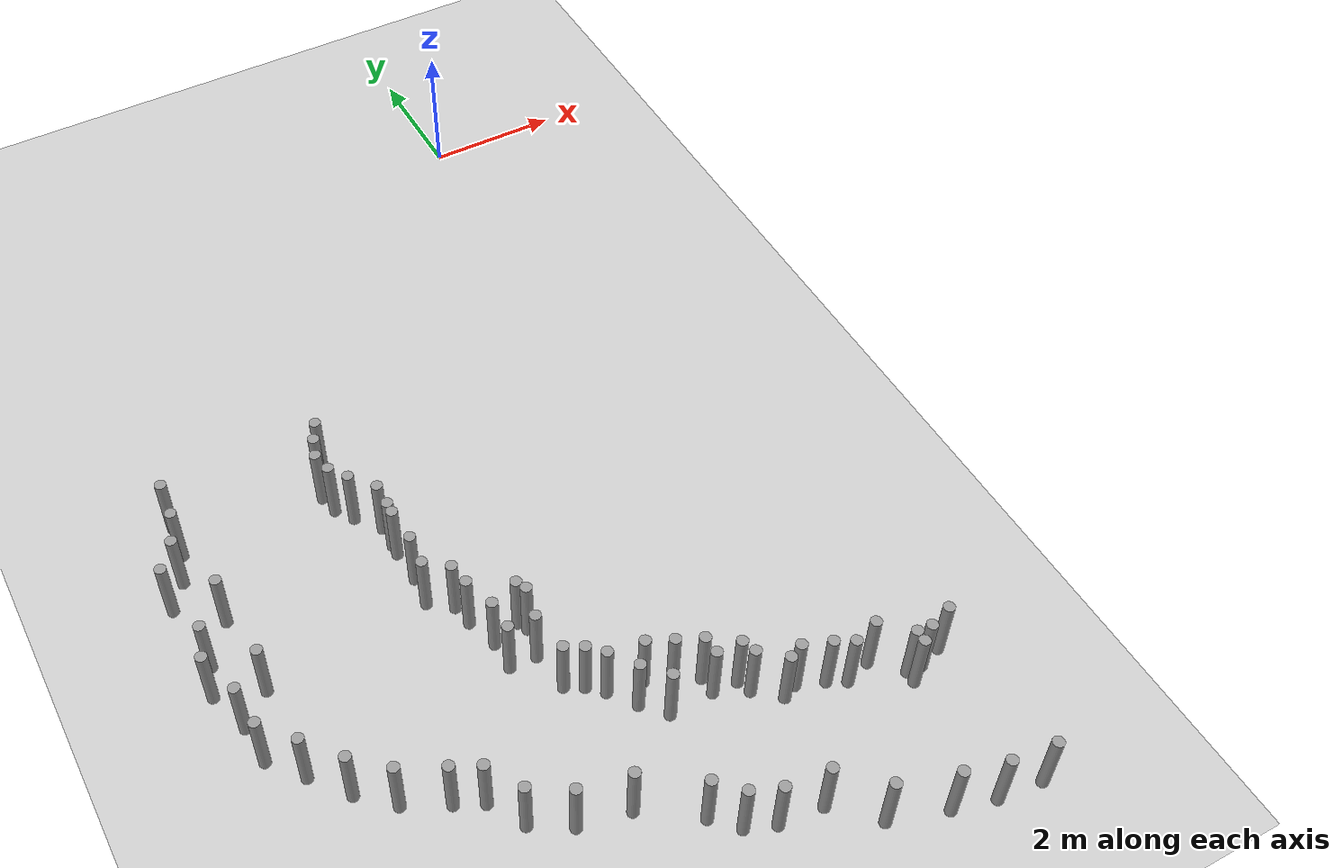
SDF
<sdf version="1.6">
 <world name="default">
  <model name="ground_plane">
   <static>1</static>
   <link name="link">
    <collision name="collision">
     <geometry><plane><normal>0 0 1</normal><size>100 100</size></plane></geometry>
     <surface><friction><ode><mu>100</mu><mu2>50</mu2></ode></friction></surface>
    </collision>
    <visual name="visual">
     <cast_shadows>0</cast_shadows>
     <geometry><plane><normal>0 0 1</normal><size>100 100</size></plane></geometry>
     <material>
      <script><uri>file://media/materials/scripts/gazebo.material</uri><name>Gazebo/Grey</name></script>
     </material>
    </visual>
   </link>
  </model>
  <model name="unit_cylinder_0_clone_clone_34">
   <pose>-0.589688 -11.484 0.49999 0 -0 0.005834</pose>
   <link name="link">
    <inertial>
     <mass>1</mass>
     <inertia><ixx>0.145833</ixx><ixy>0</ixy><ixz>0</ixz><iyy>0.145833</iyy><iyz>0</iyz><izz>0.125</izz></inertia>
    </inertial>
    <collision name="collision">
     <geometry><cylinder><radius>0.0811363</radius><length>1</length></cylinder></geometry>
    </collision>
    <visual name="visual">
     <geometry><cylinder><radius>0.0811363</radius><length>1</length></cylinder></geometry>
     <material>
      <script><name>Gazebo/Grey</name><uri>file://media/materials/scripts/gazebo.material</uri></script>
     </material>
    </visual>
   </link>
  </model>
  <model name="unit_cylinder_0_clone_clone_35">
   <pose>-2.99997 -9.99996 0.499997 0 -0 0.001866</pose>
   <link name="link">
    <inertial>
     <mass>1</mass>
     <inertia><ixx>0.145833</ixx><ixy>0</ixy><ixz>0</ixz><iyy>0.145833</iyy><iyz>0</iyz><izz>0.125</izz></inertia>
    </inertial>
    <collision name="collision">
     <geometry><cylinder><radius>0.0811363</radius><length>1</length></cylinder></geometry>
    </collision>
    <visual name="visual">
     <geometry><cylinder><radius>0.0811363</radius><length>1</length></cylinder></geometry>
     <material>
      <script><name>Gazebo/Grey</name><uri>file://media/materials/scripts/gazebo.material</uri></script>
     </material>
    </visual>
   </link>
  </model>
  <model name="unit_cylinder_0_clone_clone_36">
   <pose>-4 -7.99996 0.499996 0 -0 0.002922</pose>
   <link name="link">
    <inertial>
     <mass>1</mass>
     <inertia><ixx>0.145833</ixx><ixy>0</ixy><ixz>0</ixz><iyy>0.145833</iyy><iyz>0</iyz><izz>0.125</izz></inertia>
    </inertial>
    <collision name="collision">
     <geometry><cylinder><radius>0.0811363</radius><length>1</length></cylinder></geometry>
    </collision>
    <visual name="visual">
     <geometry><cylinder><radius>0.0811363</radius><length>1</length></cylinder></geometry>
     <material>
      <script><name>Gazebo/Grey</name><uri>file://media/materials/scripts/gazebo.material</uri></script>
     </material>
    </visual>
   </link>
  </model>
  <model name="unit_cylinder_0_clone_clone_37">
   <pose>-4.45742 -5.99996 0.499997 0 -0 0.001784</pose>
   <link name="link">
    <inertial>
     <mass>1</mass>
     <inertia><ixx>0.145833</ixx><ixy>0</ixy><ixz>0</ixz><iyy>0.145833</iyy><iyz>0</iyz><izz>0.125</izz></inertia>
    </inertial>
    <collision name="collision">
     <geometry><cylinder><radius>0.0811363</radius><length>1</length></cylinder></geometry>
    </collision>
    <visual name="visual">
     <geometry><cylinder><radius>0.0811363</radius><length>1</length></cylinder></geometry>
     <material>
      <script><name>Gazebo/Grey</name><uri>file://media/materials/scripts/gazebo.material</uri></script>
     </material>
    </visual>
   </link>
  </model>
  <model name="unit_cylinder_0_clone_clone_63">
   <pose>-0.38002 -11.3959 0.49999 0 -0 0.006968</pose>
   <link name="link">
    <inertial>
     <mass>1</mass>
     <inertia><ixx>0.145833</ixx><ixy>0</ixy><ixz>0</ixz><iyy>0.145833</iyy><iyz>0</iyz><izz>0.125</izz></inertia>
    </inertial>
    <collision name="collision">
     <geometry><cylinder><radius>0.0811363</radius><length>1</length></cylinder></geometry>
    </collision>
    <visual name="visual">
     <geometry><cylinder><radius>0.0811363</radius><length>1</length></cylinder></geometry>
     <material>
      <script><name>Gazebo/Grey</name><uri>file://media/materials/scripts/gazebo.material</uri></script>
     </material>
    </visual>
   </link>
  </model>
  <model name="unit_cylinder_0_clone_clone_64">
   <pose>0.2522 -11.6747 0.5 0 -0 0.006834</pose>
   <link name="link">
    <inertial>
     <mass>1</mass>
     <inertia><ixx>0.145833</ixx><ixy>0</ixy><ixz>0</ixz><iyy>0.145833</iyy><iyz>0</iyz><izz>0.125</izz></inertia>
    </inertial>
    <collision name="collision">
     <geometry><cylinder><radius>0.0811363</radius><length>1</length></cylinder></geometry>
    </collision>
    <visual name="visual">
     <geometry><cylinder><radius>0.0811363</radius><length>1</length></cylinder></geometry>
     <material>
      <script><name>Gazebo/Grey</name><uri>file://media/materials/scripts/gazebo.material</uri></script>
     </material>
    </visual>
   </link>
  </model>
  <model name="unit_cylinder_0_clone_clone_65">
   <pose>1.00292 -11.9189 0.49999 0 -0 0.006795</pose>
   <link name="link">
    <inertial>
     <mass>1</mass>
     <inertia><ixx>0.145833</ixx><ixy>0</ixy><ixz>0</ixz><iyy>0.145833</iyy><iyz>0</iyz><izz>0.125</izz></inertia>
    </inertial>
    <collision name="collision">
     <geometry><cylinder><radius>0.0811363</radius><length>1</length></cylinder></geometry>
    </collision>
    <visual name="visual">
     <geometry><cylinder><radius>0.0811363</radius><length>1</length></cylinder></geometry>
     <material>
      <script><name>Gazebo/Grey</name><uri>file://media/materials/scripts/gazebo.material</uri></script>
     </material>
    </visual>
   </link>
  </model>
  <model name="unit_cylinder_0_clone_clone_66">
   <pose>0.997087 -12.081 0.5 0 -0 0.006512</pose>
   <link name="link">
    <inertial>
     <mass>1</mass>
     <inertia><ixx>0.145833</ixx><ixy>0</ixy><ixz>0</ixz><iyy>0.145833</iyy><iyz>0</iyz><izz>0.125</izz></inertia>
    </inertial>
    <collision name="collision">
     <geometry><cylinder><radius>0.0811363</radius><length>1</length></cylinder></geometry>
    </collision>
    <visual name="visual">
     <geometry><cylinder><radius>0.0811363</radius><length>1</length></cylinder></geometry>
     <material>
      <script><name>Gazebo/Grey</name><uri>file://media/materials/scripts/gazebo.material</uri></script>
     </material>
    </visual>
   </link>
  </model>
  <model name="unit_cylinder_0_clone_clone_67">
   <pose>1.56102 -11.821 0.49999 0 -0 0.006826</pose>
   <link name="link">
    <inertial>
     <mass>1</mass>
     <inertia><ixx>0.145833</ixx><ixy>0</ixy><ixz>0</ixz><iyy>0.145833</iyy><iyz>0</iyz><izz>0.125</izz></inertia>
    </inertial>
    <collision name="collision">
     <geometry><cylinder><radius>0.0811363</radius><length>1</length></cylinder></geometry>
    </collision>
    <visual name="visual">
     <geometry><cylinder><radius>0.0811363</radius><length>1</length></cylinder></geometry>
     <material>
      <script><name>Gazebo/Grey</name><uri>file://media/materials/scripts/gazebo.material</uri></script>
     </material>
    </visual>
   </link>
  </model>
  <model name="unit_cylinder_0_clone_clone_70">
   <pose>1.2165 -11.9363 0.49999 0 -0 0.006762</pose>
   <link name="link">
    <inertial>
     <mass>1</mass>
     <inertia><ixx>0.145833</ixx><ixy>0</ixy><ixz>0</ixz><iyy>0.145833</iyy><iyz>0</iyz><izz>0.125</izz></inertia>
    </inertial>
    <collision name="collision">
     <geometry><cylinder><radius>0.0811363</radius><length>1</length></cylinder></geometry>
    </collision>
    <visual name="visual">
     <geometry><cylinder><radius>0.0811363</radius><length>1</length></cylinder></geometry>
     <material>
      <script><name>Gazebo/Grey</name><uri>file://media/materials/scripts/gazebo.material</uri></script>
     </material>
    </visual>
   </link>
  </model>
  <model name="unit_cylinder_0_clone_clone_71">
   <pose>0.627966 -11.5591 0.49999 0 -0 0.006654</pose>
   <link name="link">
    <inertial>
     <mass>1</mass>
     <inertia><ixx>0.145833</ixx><ixy>0</ixy><ixz>0</ixz><iyy>0.145833</iyy><iyz>0</iyz><izz>0.125</izz></inertia>
    </inertial>
    <collision name="collision">
     <geometry><cylinder><radius>0.0811363</radius><length>1</length></cylinder></geometry>
    </collision>
    <visual name="visual">
     <geometry><cylinder><radius>0.0811363</radius><length>1</length></cylinder></geometry>
     <material>
      <script><name>Gazebo/Grey</name><uri>file://media/materials/scripts/gazebo.material</uri></script>
     </material>
    </visual>
   </link>
  </model>
  <model name="unit_cylinder_0_clone_clone_72">
   <pose>4e-06 -11.5429 0.5 0 -0 0.006645</pose>
   <link name="link">
    <inertial>
     <mass>1</mass>
     <inertia><ixx>0.145833</ixx><ixy>0</ixy><ixz>0</ixz><iyy>0.145833</iyy><iyz>0</iyz><izz>0.125</izz></inertia>
    </inertial>
    <collision name="collision">
     <geometry><cylinder><radius>0.0811363</radius><length>1</length></cylinder></geometry>
    </collision>
    <visual name="visual">
     <geometry><cylinder><radius>0.0811363</radius><length>1</length></cylinder></geometry>
     <material>
      <script><name>Gazebo/Grey</name><uri>file://media/materials/scripts/gazebo.material</uri></script>
     </material>
    </visual>
   </link>
  </model>
  <model name="unit_cylinder_0_clone_clone_73">
   <pose>-0.928212 -11.1978 0.49999 0 -0 0.00657</pose>
   <link name="link">
    <inertial>
     <mass>1</mass>
     <inertia><ixx>0.145833</ixx><ixy>0</ixy><ixz>0</ixz><iyy>0.145833</iyy><iyz>0</iyz><izz>0.125</izz></inertia>
    </inertial>
    <collision name="collision">
     <geometry><cylinder><radius>0.0811363</radius><length>1</length></cylinder></geometry>
    </collision>
    <visual name="visual">
     <geometry><cylinder><radius>0.0811363</radius><length>1</length></cylinder></geometry>
     <material>
      <script><name>Gazebo/Grey</name><uri>file://media/materials/scripts/gazebo.material</uri></script>
     </material>
    </visual>
   </link>
  </model>
  <model name="unit_cylinder_0_clone_clone_74">
   <pose>-0.999995 -10.9999 0.5 0 -0 0.006509</pose>
   <link name="link">
    <inertial>
     <mass>1</mass>
     <inertia><ixx>0.145833</ixx><ixy>0</ixy><ixz>0</ixz><iyy>0.145833</iyy><iyz>0</iyz><izz>0.125</izz></inertia>
    </inertial>
    <collision name="collision">
     <geometry><cylinder><radius>0.0811363</radius><length>1</length></cylinder></geometry>
    </collision>
    <visual name="visual">
     <geometry><cylinder><radius>0.0811363</radius><length>1</length></cylinder></geometry>
     <material>
      <script><name>Gazebo/Grey</name><uri>file://media/materials/scripts/gazebo.material</uri></script>
     </material>
    </visual>
   </link>
  </model>
  <model name="unit_cylinder_0_clone_clone_75">
   <pose>-1.37619 -10.7341 0.5 0 -0 0.004758</pose>
   <link name="link">
    <inertial>
     <mass>1</mass>
     <inertia><ixx>0.145833</ixx><ixy>0</ixy><ixz>0</ixz><iyy>0.145833</iyy><iyz>0</iyz><izz>0.125</izz></inertia>
    </inertial>
    <collision name="collision">
     <geometry><cylinder><radius>0.0811363</radius><length>1</length></cylinder></geometry>
    </collision>
    <visual name="visual">
     <geometry><cylinder><radius>0.0811363</radius><length>1</length></cylinder></geometry>
     <material>
      <script><name>Gazebo/Grey</name><uri>file://media/materials/scripts/gazebo.material</uri></script>
     </material>
    </visual>
   </link>
  </model>
  <model name="unit_cylinder_0_clone_clone_76">
   <pose>-1.71913 -10.5755 0.49999 0 -0 0.00643</pose>
   <link name="link">
    <inertial>
     <mass>1</mass>
     <inertia><ixx>0.145833</ixx><ixy>0</ixy><ixz>0</ixz><iyy>0.145833</iyy><iyz>0</iyz><izz>0.125</izz></inertia>
    </inertial>
    <collision name="collision">
     <geometry><cylinder><radius>0.0811363</radius><length>1</length></cylinder></geometry>
    </collision>
    <visual name="visual">
     <geometry><cylinder><radius>0.0811363</radius><length>1</length></cylinder></geometry>
     <material>
      <script><name>Gazebo/Grey</name><uri>file://media/materials/scripts/gazebo.material</uri></script>
     </material>
    </visual>
   </link>
  </model>
  <model name="unit_cylinder_0_clone_clone_77">
   <pose>-2.06104 -10.4174 0.49999 0 -0 0.006414</pose>
   <link name="link">
    <inertial>
     <mass>1</mass>
     <inertia><ixx>0.145833</ixx><ixy>0</ixy><ixz>0</ixz><iyy>0.145833</iyy><iyz>0</iyz><izz>0.125</izz></inertia>
    </inertial>
    <collision name="collision">
     <geometry><cylinder><radius>0.0811363</radius><length>1</length></cylinder></geometry>
    </collision>
    <visual name="visual">
     <geometry><cylinder><radius>0.0811363</radius><length>1</length></cylinder></geometry>
     <material>
      <script><name>Gazebo/Grey</name><uri>file://media/materials/scripts/gazebo.material</uri></script>
     </material>
    </visual>
   </link>
  </model>
  <model name="unit_cylinder_0_clone_clone_78">
   <pose>-2.55282 -10.3337 0.49999 0 -0 0.006397</pose>
   <link name="link">
    <inertial>
     <mass>1</mass>
     <inertia><ixx>0.145833</ixx><ixy>0</ixy><ixz>0</ixz><iyy>0.145833</iyy><iyz>0</iyz><izz>0.125</izz></inertia>
    </inertial>
    <collision name="collision">
     <geometry><cylinder><radius>0.0811363</radius><length>1</length></cylinder></geometry>
    </collision>
    <visual name="visual">
     <geometry><cylinder><radius>0.0811363</radius><length>1</length></cylinder></geometry>
     <material>
      <script><name>Gazebo/Grey</name><uri>file://media/materials/scripts/gazebo.material</uri></script>
     </material>
    </visual>
   </link>
  </model>
  <model name="unit_cylinder_0_clone_clone_79">
   <pose>-1.99999 -10.9999 0.49999 0 -0 0.006218</pose>
   <link name="link">
    <inertial>
     <mass>1</mass>
     <inertia><ixx>0.145833</ixx><ixy>0</ixy><ixz>0</ixz><iyy>0.145833</iyy><iyz>0</iyz><izz>0.125</izz></inertia>
    </inertial>
    <collision name="collision">
     <geometry><cylinder><radius>0.0811363</radius><length>1</length></cylinder></geometry>
    </collision>
    <visual name="visual">
     <geometry><cylinder><radius>0.0811363</radius><length>1</length></cylinder></geometry>
     <material>
      <script><name>Gazebo/Grey</name><uri>file://media/materials/scripts/gazebo.material</uri></script>
     </material>
    </visual>
   </link>
  </model>
  <model name="unit_cylinder_0_clone_clone_80">
   <pose>-1.36251 -10.9852 0.499996 0 -0 0.002987</pose>
   <link name="link">
    <inertial>
     <mass>1</mass>
     <inertia><ixx>0.145833</ixx><ixy>0</ixy><ixz>0</ixz><iyy>0.145833</iyy><iyz>0</iyz><izz>0.125</izz></inertia>
    </inertial>
    <collision name="collision">
     <geometry><cylinder><radius>0.0811363</radius><length>1</length></cylinder></geometry>
    </collision>
    <visual name="visual">
     <geometry><cylinder><radius>0.0811363</radius><length>1</length></cylinder></geometry>
     <material>
      <script><name>Gazebo/Grey</name><uri>file://media/materials/scripts/gazebo.material</uri></script>
     </material>
    </visual>
   </link>
  </model>
  <model name="unit_cylinder_0_clone_clone_81">
   <pose>-2.28596 -10.6889 0.499993 0 -0 0.004032</pose>
   <link name="link">
    <inertial>
     <mass>1</mass>
     <inertia><ixx>0.145833</ixx><ixy>0</ixy><ixz>0</ixz><iyy>0.145833</iyy><iyz>0</iyz><izz>0.125</izz></inertia>
    </inertial>
    <collision name="collision">
     <geometry><cylinder><radius>0.0811363</radius><length>1</length></cylinder></geometry>
    </collision>
    <visual name="visual">
     <geometry><cylinder><radius>0.0811363</radius><length>1</length></cylinder></geometry>
     <material>
      <script><name>Gazebo/Grey</name><uri>file://media/materials/scripts/gazebo.material</uri></script>
     </material>
    </visual>
   </link>
  </model>
  <model name="unit_cylinder_0_clone_clone_82">
   <pose>-2.75656 -10.1345 0.49999 0 -0 0.007037</pose>
   <link name="link">
    <inertial>
     <mass>1</mass>
     <inertia><ixx>0.145833</ixx><ixy>0</ixy><ixz>0</ixz><iyy>0.145833</iyy><iyz>0</iyz><izz>0.125</izz></inertia>
    </inertial>
    <collision name="collision">
     <geometry><cylinder><radius>0.0811363</radius><length>1</length></cylinder></geometry>
    </collision>
    <visual name="visual">
     <geometry><cylinder><radius>0.0811363</radius><length>1</length></cylinder></geometry>
     <material>
      <script><name>Gazebo/Grey</name><uri>file://media/materials/scripts/gazebo.material</uri></script>
     </material>
    </visual>
   </link>
  </model>
  <model name="unit_cylinder_0_clone_clone_83">
   <pose>-3.68783 -8.2432 0.49999 0 -0 0.007001</pose>
   <link name="link">
    <inertial>
     <mass>1</mass>
     <inertia><ixx>0.145833</ixx><ixy>0</ixy><ixz>0</ixz><iyy>0.145833</iyy><iyz>0</iyz><izz>0.125</izz></inertia>
    </inertial>
    <collision name="collision">
     <geometry><cylinder><radius>0.0811363</radius><length>1</length></cylinder></geometry>
    </collision>
    <visual name="visual">
     <geometry><cylinder><radius>0.0811363</radius><length>1</length></cylinder></geometry>
     <material>
      <script><name>Gazebo/Grey</name><uri>file://media/materials/scripts/gazebo.material</uri></script>
     </material>
    </visual>
   </link>
  </model>
  <model name="unit_cylinder_0_clone_clone_84">
   <pose>-3.6308 -8.5485 0.5 0 -0 0.007119</pose>
   <link name="link">
    <inertial>
     <mass>1</mass>
     <inertia><ixx>0.145833</ixx><ixy>0</ixy><ixz>0</ixz><iyy>0.145833</iyy><iyz>0</iyz><izz>0.125</izz></inertia>
    </inertial>
    <collision name="collision">
     <geometry><cylinder><radius>0.0811363</radius><length>1</length></cylinder></geometry>
    </collision>
    <visual name="visual">
     <geometry><cylinder><radius>0.0811363</radius><length>1</length></cylinder></geometry>
     <material>
      <script><name>Gazebo/Grey</name><uri>file://media/materials/scripts/gazebo.material</uri></script>
     </material>
    </visual>
   </link>
  </model>
  <model name="unit_cylinder_0_clone_clone_85">
   <pose>-3.06945 -8.8574 0.499996 0 -0 0.003518</pose>
   <link name="link">
    <inertial>
     <mass>1</mass>
     <inertia><ixx>0.145833</ixx><ixy>0</ixy><ixz>0</ixz><iyy>0.145833</iyy><iyz>0</iyz><izz>0.125</izz></inertia>
    </inertial>
    <collision name="collision">
     <geometry><cylinder><radius>0.0811363</radius><length>1</length></cylinder></geometry>
    </collision>
    <visual name="visual">
     <geometry><cylinder><radius>0.0811363</radius><length>1</length></cylinder></geometry>
     <material>
      <script><name>Gazebo/Grey</name><uri>file://media/materials/scripts/gazebo.material</uri></script>
     </material>
    </visual>
   </link>
  </model>
  <model name="unit_cylinder_0_clone_clone_86">
   <pose>-3.48268 -8.99994 0.5 0 -0 0.007167</pose>
   <link name="link">
    <inertial>
     <mass>1</mass>
     <inertia><ixx>0.145833</ixx><ixy>0</ixy><ixz>0</ixz><iyy>0.145833</iyy><iyz>0</iyz><izz>0.125</izz></inertia>
    </inertial>
    <collision name="collision">
     <geometry><cylinder><radius>0.0811363</radius><length>1</length></cylinder></geometry>
    </collision>
    <visual name="visual">
     <geometry><cylinder><radius>0.0811363</radius><length>1</length></cylinder></geometry>
     <material>
      <script><name>Gazebo/Grey</name><uri>file://media/materials/scripts/gazebo.material</uri></script>
     </material>
    </visual>
   </link>
  </model>
  <model name="unit_cylinder_0_clone_clone_87">
   <pose>-2.99841 -9.00329 0.499996 0 -0 0.003532</pose>
   <link name="link">
    <inertial>
     <mass>1</mass>
     <inertia><ixx>0.145833</ixx><ixy>0</ixy><ixz>0</ixz><iyy>0.145833</iyy><iyz>0</iyz><izz>0.125</izz></inertia>
    </inertial>
    <collision name="collision">
     <geometry><cylinder><radius>0.0811363</radius><length>1</length></cylinder></geometry>
    </collision>
    <visual name="visual">
     <geometry><cylinder><radius>0.0811363</radius><length>1</length></cylinder></geometry>
     <material>
      <script><name>Gazebo/Grey</name><uri>file://media/materials/scripts/gazebo.material</uri></script>
     </material>
    </visual>
   </link>
  </model>
  <model name="unit_cylinder_0_clone_clone_88">
   <pose>-3.47003 -9.41133 0.49999 0 -0 0.007018</pose>
   <link name="link">
    <inertial>
     <mass>1</mass>
     <inertia><ixx>0.145833</ixx><ixy>0</ixy><ixz>0</ixz><iyy>0.145833</iyy><iyz>0</iyz><izz>0.125</izz></inertia>
    </inertial>
    <collision name="collision">
     <geometry><cylinder><radius>0.0811363</radius><length>1</length></cylinder></geometry>
    </collision>
    <visual name="visual">
     <geometry><cylinder><radius>0.0811363</radius><length>1</length></cylinder></geometry>
     <material>
      <script><name>Gazebo/Grey</name><uri>file://media/materials/scripts/gazebo.material</uri></script>
     </material>
    </visual>
   </link>
  </model>
  <model name="unit_cylinder_0_clone_clone_89">
   <pose>-3.08948 -9.43205 0.5 0 -0 0.007084</pose>
   <link name="link">
    <inertial>
     <mass>1</mass>
     <inertia><ixx>0.145833</ixx><ixy>0</ixy><ixz>0</ixz><iyy>0.145833</iyy><iyz>0</iyz><izz>0.125</izz></inertia>
    </inertial>
    <collision name="collision">
     <geometry><cylinder><radius>0.0811363</radius><length>1</length></cylinder></geometry>
    </collision>
    <visual name="visual">
     <geometry><cylinder><radius>0.0811363</radius><length>1</length></cylinder></geometry>
     <material>
      <script><name>Gazebo/Grey</name><uri>file://media/materials/scripts/gazebo.material</uri></script>
     </material>
    </visual>
   </link>
  </model>
  <model name="unit_cylinder_0_clone_clone_90">
   <pose>-3.96763 -7.56688 0.49999 0 -0 0.007023</pose>
   <link name="link">
    <inertial>
     <mass>1</mass>
     <inertia><ixx>0.145833</ixx><ixy>0</ixy><ixz>0</ixz><iyy>0.145833</iyy><iyz>0</iyz><izz>0.125</izz></inertia>
    </inertial>
    <collision name="collision">
     <geometry><cylinder><radius>0.0811363</radius><length>1</length></cylinder></geometry>
    </collision>
    <visual name="visual">
     <geometry><cylinder><radius>0.0811363</radius><length>1</length></cylinder></geometry>
     <material>
      <script><name>Gazebo/Grey</name><uri>file://media/materials/scripts/gazebo.material</uri></script>
     </material>
    </visual>
   </link>
  </model>
  <model name="unit_cylinder_0_clone_clone_91">
   <pose>-3.99713 -6.91886 0.5 0 -0 0.007044</pose>
   <link name="link">
    <inertial>
     <mass>1</mass>
     <inertia><ixx>0.145833</ixx><ixy>0</ixy><ixz>0</ixz><iyy>0.145833</iyy><iyz>0</iyz><izz>0.125</izz></inertia>
    </inertial>
    <collision name="collision">
     <geometry><cylinder><radius>0.0811363</radius><length>1</length></cylinder></geometry>
    </collision>
    <visual name="visual">
     <geometry><cylinder><radius>0.0811363</radius><length>1</length></cylinder></geometry>
     <material>
      <script><name>Gazebo/Grey</name><uri>file://media/materials/scripts/gazebo.material</uri></script>
     </material>
    </visual>
   </link>
  </model>
  <model name="unit_cylinder_0_clone_clone_92">
   <pose>-4.00286 -7.08104 0.49999 0 -0 0.006873</pose>
   <link name="link">
    <inertial>
     <mass>1</mass>
     <inertia><ixx>0.145833</ixx><ixy>0</ixy><ixz>0</ixz><iyy>0.145833</iyy><iyz>0</iyz><izz>0.125</izz></inertia>
    </inertial>
    <collision name="collision">
     <geometry><cylinder><radius>0.0811363</radius><length>1</length></cylinder></geometry>
    </collision>
    <visual name="visual">
     <geometry><cylinder><radius>0.0811363</radius><length>1</length></cylinder></geometry>
     <material>
      <script><name>Gazebo/Grey</name><uri>file://media/materials/scripts/gazebo.material</uri></script>
     </material>
    </visual>
   </link>
  </model>
  <model name="unit_cylinder_0_clone_clone_93">
   <pose>-4.27473 -6.25243 0.49999 0 -0 0.007028</pose>
   <link name="link">
    <inertial>
     <mass>1</mass>
     <inertia><ixx>0.145833</ixx><ixy>0</ixy><ixz>0</ixz><iyy>0.145833</iyy><iyz>0</iyz><izz>0.125</izz></inertia>
    </inertial>
    <collision name="collision">
     <geometry><cylinder><radius>0.0811363</radius><length>1</length></cylinder></geometry>
    </collision>
    <visual name="visual">
     <geometry><cylinder><radius>0.0811363</radius><length>1</length></cylinder></geometry>
     <material>
      <script><name>Gazebo/Grey</name><uri>file://media/materials/scripts/gazebo.material</uri></script>
     </material>
    </visual>
   </link>
  </model>
  <model name="unit_cylinder_0_clone_clone_94">
   <pose>-3.99998 -6.59279 0.499993 0 -0 0.004066</pose>
   <link name="link">
    <inertial>
     <mass>1</mass>
     <inertia><ixx>0.145833</ixx><ixy>0</ixy><ixz>0</ixz><iyy>0.145833</iyy><iyz>0</iyz><izz>0.125</izz></inertia>
    </inertial>
    <collision name="collision">
     <geometry><cylinder><radius>0.0811363</radius><length>1</length></cylinder></geometry>
    </collision>
    <visual name="visual">
     <geometry><cylinder><radius>0.0811363</radius><length>1</length></cylinder></geometry>
     <material>
      <script><name>Gazebo/Grey</name><uri>file://media/materials/scripts/gazebo.material</uri></script>
     </material>
    </visual>
   </link>
  </model>
  <model name="unit_cylinder_0_clone_clone_98">
   <pose>-4.30304 -5.18375 0.49999 0 -0 0.006972</pose>
   <link name="link">
    <inertial>
     <mass>1</mass>
     <inertia><ixx>0.145833</ixx><ixy>0</ixy><ixz>0</ixz><iyy>0.145833</iyy><iyz>0</iyz><izz>0.125</izz></inertia>
    </inertial>
    <collision name="collision">
     <geometry><cylinder><radius>0.0811363</radius><length>1</length></cylinder></geometry>
    </collision>
    <visual name="visual">
     <geometry><cylinder><radius>0.0811363</radius><length>1</length></cylinder></geometry>
     <material>
      <script><name>Gazebo/Grey</name><uri>file://media/materials/scripts/gazebo.material</uri></script>
     </material>
    </visual>
   </link>
  </model>
  <model name="unit_cylinder_0_clone_clone_99">
   <pose>-4.43147 -5.44115 0.499996 0 -0 0.003769</pose>
   <link name="link">
    <inertial>
     <mass>1</mass>
     <inertia><ixx>0.145833</ixx><ixy>0</ixy><ixz>0</ixz><iyy>0.145833</iyy><iyz>0</iyz><izz>0.125</izz></inertia>
    </inertial>
    <collision name="collision">
     <geometry><cylinder><radius>0.0811363</radius><length>1</length></cylinder></geometry>
    </collision>
    <visual name="visual">
     <geometry><cylinder><radius>0.0811363</radius><length>1</length></cylinder></geometry>
     <material>
      <script><name>Gazebo/Grey</name><uri>file://media/materials/scripts/gazebo.material</uri></script>
     </material>
    </visual>
   </link>
  </model>
  <model name="unit_cylinder_0_clone_clone_100">
   <pose>-4.52093 -5.71279 0.499997 0 -0 0.004545</pose>
   <link name="link">
    <inertial>
     <mass>1</mass>
     <inertia><ixx>0.145833</ixx><ixy>0</ixy><ixz>0</ixz><iyy>0.145833</iyy><iyz>0</iyz><izz>0.125</izz></inertia>
    </inertial>
    <collision name="collision">
     <geometry><cylinder><radius>0.0811363</radius><length>1</length></cylinder></geometry>
    </collision>
    <visual name="visual">
     <geometry><cylinder><radius>0.0811363</radius><length>1</length></cylinder></geometry>
     <material>
      <script><name>Gazebo/Grey</name><uri>file://media/materials/scripts/gazebo.material</uri></script>
     </material>
    </visual>
   </link>
  </model>
  <model name="unit_cylinder_0_clone_clone_128">
   <pose>0.920433 -13.9299 0.5 0 -0 0.00583</pose>
   <link name="link">
    <inertial>
     <mass>1</mass>
     <inertia><ixx>0.145833</ixx><ixy>0</ixy><ixz>0</ixz><iyy>0.145833</iyy><iyz>0</iyz><izz>0.125</izz></inertia>
    </inertial>
    <collision name="collision">
     <geometry><cylinder><radius>0.0811363</radius><length>1</length></cylinder></geometry>
    </collision>
    <visual name="visual">
     <geometry><cylinder><radius>0.0811363</radius><length>1</length></cylinder></geometry>
     <material>
      <script><name>Gazebo/Grey</name><uri>file://media/materials/scripts/gazebo.material</uri></script>
     </material>
    </visual>
   </link>
  </model>
  <model name="unit_cylinder_0_clone_clone_129">
   <pose>-2.3379 -12.4556 0.499996 0 -0 0.003577</pose>
   <link name="link">
    <inertial>
     <mass>1</mass>
     <inertia><ixx>0.145833</ixx><ixy>0</ixy><ixz>0</ixz><iyy>0.145833</iyy><iyz>0</iyz><izz>0.125</izz></inertia>
    </inertial>
    <collision name="collision">
     <geometry><cylinder><radius>0.0811363</radius><length>1</length></cylinder></geometry>
    </collision>
    <visual name="visual">
     <geometry><cylinder><radius>0.0811363</radius><length>1</length></cylinder></geometry>
     <material>
      <script><name>Gazebo/Grey</name><uri>file://media/materials/scripts/gazebo.material</uri></script>
     </material>
    </visual>
   </link>
  </model>
  <model name="unit_cylinder_0_clone_clone_130">
   <pose>-4.9642 -10.8178 0.499993 0 -0 0.003347</pose>
   <link name="link">
    <inertial>
     <mass>1</mass>
     <inertia><ixx>0.145833</ixx><ixy>0</ixy><ixz>0</ixz><iyy>0.145833</iyy><iyz>0</iyz><izz>0.125</izz></inertia>
    </inertial>
    <collision name="collision">
     <geometry><cylinder><radius>0.0811363</radius><length>1</length></cylinder></geometry>
    </collision>
    <visual name="visual">
     <geometry><cylinder><radius>0.0811363</radius><length>1</length></cylinder></geometry>
     <material>
      <script><name>Gazebo/Grey</name><uri>file://media/materials/scripts/gazebo.material</uri></script>
     </material>
    </visual>
   </link>
  </model>
  <model name="unit_cylinder_0_clone_clone_131">
   <pose>-6.36004 -8.23161 0.5 0 -0 0.005742</pose>
   <link name="link">
    <inertial>
     <mass>1</mass>
     <inertia><ixx>0.145833</ixx><ixy>0</ixy><ixz>0</ixz><iyy>0.145833</iyy><iyz>0</iyz><izz>0.125</izz></inertia>
    </inertial>
    <collision name="collision">
     <geometry><cylinder><radius>0.0811363</radius><length>1</length></cylinder></geometry>
    </collision>
    <visual name="visual">
     <geometry><cylinder><radius>0.0811363</radius><length>1</length></cylinder></geometry>
     <material>
      <script><name>Gazebo/Grey</name><uri>file://media/materials/scripts/gazebo.material</uri></script>
     </material>
    </visual>
   </link>
  </model>
  <model name="unit_cylinder_0_clone_clone_226">
   <pose>1.553 -14 0.5 0 -0 0.003622</pose>
   <link name="link">
    <inertial>
     <mass>1</mass>
     <inertia><ixx>0.145833</ixx><ixy>0</ixy><ixz>0</ixz><iyy>0.145833</iyy><iyz>0</iyz><izz>0.125</izz></inertia>
    </inertial>
    <collision name="collision">
     <geometry><cylinder><radius>0.0811363</radius><length>1</length></cylinder></geometry>
    </collision>
    <visual name="visual">
     <geometry><cylinder><radius>0.0811363</radius><length>1</length></cylinder></geometry>
     <material>
      <script><name>Gazebo/Grey</name><uri>file://media/materials/scripts/gazebo.material</uri></script>
     </material>
    </visual>
   </link>
  </model>
  <model name="unit_cylinder_0_clone_clone_227">
   <pose>0.328832 -13.7754 0.499993 0 -0 0.003146</pose>
   <link name="link">
    <inertial>
     <mass>1</mass>
     <inertia><ixx>0.145833</ixx><ixy>0</ixy><ixz>0</ixz><iyy>0.145833</iyy><iyz>0</iyz><izz>0.125</izz></inertia>
    </inertial>
    <collision name="collision">
     <geometry><cylinder><radius>0.0811363</radius><length>1</length></cylinder></geometry>
    </collision>
    <visual name="visual">
     <geometry><cylinder><radius>0.0811363</radius><length>1</length></cylinder></geometry>
     <material>
      <script><name>Gazebo/Grey</name><uri>file://media/materials/scripts/gazebo.material</uri></script>
     </material>
    </visual>
   </link>
  </model>
  <model name="unit_cylinder_0_clone_clone_228">
   <pose>-0.461934 -13.5217 0.499997 0 -0 0.003147</pose>
   <link name="link">
    <inertial>
     <mass>1</mass>
     <inertia><ixx>0.145833</ixx><ixy>0</ixy><ixz>0</ixz><iyy>0.145833</iyy><iyz>0</iyz><izz>0.125</izz></inertia>
    </inertial>
    <collision name="collision">
     <geometry><cylinder><radius>0.0811363</radius><length>1</length></cylinder></geometry>
    </collision>
    <visual name="visual">
     <geometry><cylinder><radius>0.0811363</radius><length>1</length></cylinder></geometry>
     <material>
      <script><name>Gazebo/Grey</name><uri>file://media/materials/scripts/gazebo.material</uri></script>
     </material>
    </visual>
   </link>
  </model>
  <model name="unit_cylinder_0_clone_clone_229">
   <pose>-0.999998 -13 0.499997 0 -0 0.003145</pose>
   <link name="link">
    <inertial>
     <mass>1</mass>
     <inertia><ixx>0.145833</ixx><ixy>0</ixy><ixz>0</ixz><iyy>0.145833</iyy><iyz>0</iyz><izz>0.125</izz></inertia>
    </inertial>
    <collision name="collision">
     <geometry><cylinder><radius>0.0811363</radius><length>1</length></cylinder></geometry>
    </collision>
    <visual name="visual">
     <geometry><cylinder><radius>0.0811363</radius><length>1</length></cylinder></geometry>
     <material>
      <script><name>Gazebo/Grey</name><uri>file://media/materials/scripts/gazebo.material</uri></script>
     </material>
    </visual>
   </link>
  </model>
  <model name="unit_cylinder_0_clone_clone_230">
   <pose>-1.62529 -12.9381 0.5 0 -0 0.003525</pose>
   <link name="link">
    <inertial>
     <mass>1</mass>
     <inertia><ixx>0.145833</ixx><ixy>0</ixy><ixz>0</ixz><iyy>0.145833</iyy><iyz>0</iyz><izz>0.125</izz></inertia>
    </inertial>
    <collision name="collision">
     <geometry><cylinder><radius>0.0811363</radius><length>1</length></cylinder></geometry>
    </collision>
    <visual name="visual">
     <geometry><cylinder><radius>0.0811363</radius><length>1</length></cylinder></geometry>
     <material>
      <script><name>Gazebo/Grey</name><uri>file://media/materials/scripts/gazebo.material</uri></script>
     </material>
    </visual>
   </link>
  </model>
  <model name="unit_cylinder_0_clone_clone_231">
   <pose>-2.02565 -12.7767 0.5 0 -0 0.003511</pose>
   <link name="link">
    <inertial>
     <mass>1</mass>
     <inertia><ixx>0.145833</ixx><ixy>0</ixy><ixz>0</ixz><iyy>0.145833</iyy><iyz>0</iyz><izz>0.125</izz></inertia>
    </inertial>
    <collision name="collision">
     <geometry><cylinder><radius>0.0811363</radius><length>1</length></cylinder></geometry>
    </collision>
    <visual name="visual">
     <geometry><cylinder><radius>0.0811363</radius><length>1</length></cylinder></geometry>
     <material>
      <script><name>Gazebo/Grey</name><uri>file://media/materials/scripts/gazebo.material</uri></script>
     </material>
    </visual>
   </link>
  </model>
  <model name="unit_cylinder_0_clone_clone_232">
   <pose>-3.07837 -11.9406 0.499995 0 -0 0.003185</pose>
   <link name="link">
    <inertial>
     <mass>1</mass>
     <inertia><ixx>0.145833</ixx><ixy>0</ixy><ixz>0</ixz><iyy>0.145833</iyy><iyz>0</iyz><izz>0.125</izz></inertia>
    </inertial>
    <collision name="collision">
     <geometry><cylinder><radius>0.0811363</radius><length>1</length></cylinder></geometry>
    </collision>
    <visual name="visual">
     <geometry><cylinder><radius>0.0811363</radius><length>1</length></cylinder></geometry>
     <material>
      <script><name>Gazebo/Grey</name><uri>file://media/materials/scripts/gazebo.material</uri></script>
     </material>
    </visual>
   </link>
  </model>
  <model name="unit_cylinder_0_clone_clone_233">
   <pose>-3.7864 -11.7986 0.499997 0 -0 0.003147</pose>
   <link name="link">
    <inertial>
     <mass>1</mass>
     <inertia><ixx>0.145833</ixx><ixy>0</ixy><ixz>0</ixz><iyy>0.145833</iyy><iyz>0</iyz><izz>0.125</izz></inertia>
    </inertial>
    <collision name="collision">
     <geometry><cylinder><radius>0.0811363</radius><length>1</length></cylinder></geometry>
    </collision>
    <visual name="visual">
     <geometry><cylinder><radius>0.0811363</radius><length>1</length></cylinder></geometry>
     <material>
      <script><name>Gazebo/Grey</name><uri>file://media/materials/scripts/gazebo.material</uri></script>
     </material>
    </visual>
   </link>
  </model>
  <model name="unit_cylinder_0_clone_clone_234">
   <pose>-4.3035 -11.4893 0.499991 0 -0 0.003444</pose>
   <link name="link">
    <inertial>
     <mass>1</mass>
     <inertia><ixx>0.145833</ixx><ixy>0</ixy><ixz>0</ixz><iyy>0.145833</iyy><iyz>0</iyz><izz>0.125</izz></inertia>
    </inertial>
    <collision name="collision">
     <geometry><cylinder><radius>0.0811363</radius><length>1</length></cylinder></geometry>
    </collision>
    <visual name="visual">
     <geometry><cylinder><radius>0.0811363</radius><length>1</length></cylinder></geometry>
     <material>
      <script><name>Gazebo/Grey</name><uri>file://media/materials/scripts/gazebo.material</uri></script>
     </material>
    </visual>
   </link>
  </model>
  <model name="unit_cylinder_0_clone_clone_235">
   <pose>-4.59391 -11 0.499993 0 -0 0.003145</pose>
   <link name="link">
    <inertial>
     <mass>1</mass>
     <inertia><ixx>0.145833</ixx><ixy>0</ixy><ixz>0</ixz><iyy>0.145833</iyy><iyz>0</iyz><izz>0.125</izz></inertia>
    </inertial>
    <collision name="collision">
     <geometry><cylinder><radius>0.0811363</radius><length>1</length></cylinder></geometry>
    </collision>
    <visual name="visual">
     <geometry><cylinder><radius>0.0811363</radius><length>1</length></cylinder></geometry>
     <material>
      <script><name>Gazebo/Grey</name><uri>file://media/materials/scripts/gazebo.material</uri></script>
     </material>
    </visual>
   </link>
  </model>
  <model name="unit_cylinder_0_clone_clone_236">
   <pose>-5.54215 -10.5219 0.499997 0 -0 0.003146</pose>
   <link name="link">
    <inertial>
     <mass>1</mass>
     <inertia><ixx>0.145833</ixx><ixy>0</ixy><ixz>0</ixz><iyy>0.145833</iyy><iyz>0</iyz><izz>0.125</izz></inertia>
    </inertial>
    <collision name="collision">
     <geometry><cylinder><radius>0.0811363</radius><length>1</length></cylinder></geometry>
    </collision>
    <visual name="visual">
     <geometry><cylinder><radius>0.0811363</radius><length>1</length></cylinder></geometry>
     <material>
      <script><name>Gazebo/Grey</name><uri>file://media/materials/scripts/gazebo.material</uri></script>
     </material>
    </visual>
   </link>
  </model>
  <model name="unit_cylinder_0_clone_clone_237">
   <pose>-5.98462 -10.1189 0.499993 0 -0 0.003153</pose>
   <link name="link">
    <inertial>
     <mass>1</mass>
     <inertia><ixx>0.145833</ixx><ixy>0</ixy><ixz>0</ixz><iyy>0.145833</iyy><iyz>0</iyz><izz>0.125</izz></inertia>
    </inertial>
    <collision name="collision">
     <geometry><cylinder><radius>0.0811363</radius><length>1</length></cylinder></geometry>
    </collision>
    <visual name="visual">
     <geometry><cylinder><radius>0.0811363</radius><length>1</length></cylinder></geometry>
     <material>
      <script><name>Gazebo/Grey</name><uri>file://media/materials/scripts/gazebo.material</uri></script>
     </material>
    </visual>
   </link>
  </model>
  <model name="unit_cylinder_0_clone_clone_238">
   <pose>-6.38462 -9.62684 0.5 0 -0 0.003352</pose>
   <link name="link">
    <inertial>
     <mass>1</mass>
     <inertia><ixx>0.145833</ixx><ixy>0</ixy><ixz>0</ixz><iyy>0.145833</iyy><iyz>0</iyz><izz>0.125</izz></inertia>
    </inertial>
    <collision name="collision">
     <geometry><cylinder><radius>0.0811363</radius><length>1</length></cylinder></geometry>
    </collision>
    <visual name="visual">
     <geometry><cylinder><radius>0.0811363</radius><length>1</length></cylinder></geometry>
     <material>
      <script><name>Gazebo/Grey</name><uri>file://media/materials/scripts/gazebo.material</uri></script>
     </material>
    </visual>
   </link>
  </model>
  <model name="unit_cylinder_0_clone_clone_239">
   <pose>-6.76086 -9.1753 0.5 0 -0 0.00334</pose>
   <link name="link">
    <inertial>
     <mass>1</mass>
     <inertia><ixx>0.145833</ixx><ixy>0</ixy><ixz>0</ixz><iyy>0.145833</iyy><iyz>0</iyz><izz>0.125</izz></inertia>
    </inertial>
    <collision name="collision">
     <geometry><cylinder><radius>0.0811363</radius><length>1</length></cylinder></geometry>
    </collision>
    <visual name="visual">
     <geometry><cylinder><radius>0.0811363</radius><length>1</length></cylinder></geometry>
     <material>
      <script><name>Gazebo/Grey</name><uri>file://media/materials/scripts/gazebo.material</uri></script>
     </material>
    </visual>
   </link>
  </model>
  <model name="unit_cylinder_0_clone_clone_240">
   <pose>-6.80192 -8.61371 0.499993 0 -0 0.003147</pose>
   <link name="link">
    <inertial>
     <mass>1</mass>
     <inertia><ixx>0.145833</ixx><ixy>0</ixy><ixz>0</ixz><iyy>0.145833</iyy><iyz>0</iyz><izz>0.125</izz></inertia>
    </inertial>
    <collision name="collision">
     <geometry><cylinder><radius>0.0811363</radius><length>1</length></cylinder></geometry>
    </collision>
    <visual name="visual">
     <geometry><cylinder><radius>0.0811363</radius><length>1</length></cylinder></geometry>
     <material>
      <script><name>Gazebo/Grey</name><uri>file://media/materials/scripts/gazebo.material</uri></script>
     </material>
    </visual>
   </link>
  </model>
  <model name="unit_cylinder_0_clone_clone_241">
   <pose>-7 -8 0.499991 0 -0 0.003309</pose>
   <link name="link">
    <inertial>
     <mass>1</mass>
     <inertia><ixx>0.145833</ixx><ixy>0</ixy><ixz>0</ixz><iyy>0.145833</iyy><iyz>0</iyz><izz>0.125</izz></inertia>
    </inertial>
    <collision name="collision">
     <geometry><cylinder><radius>0.0811363</radius><length>1</length></cylinder></geometry>
    </collision>
    <visual name="visual">
     <geometry><cylinder><radius>0.0811363</radius><length>1</length></cylinder></geometry>
     <material>
      <script><name>Gazebo/Grey</name><uri>file://media/materials/scripts/gazebo.material</uri></script>
     </material>
    </visual>
   </link>
  </model>
  <model name="unit_cylinder_0_clone_clone_242">
   <pose>-6.86233 -7.56301 0.5 0 -0 0.003294</pose>
   <link name="link">
    <inertial>
     <mass>1</mass>
     <inertia><ixx>0.145833</ixx><ixy>0</ixy><ixz>0</ixz><iyy>0.145833</iyy><iyz>0</iyz><izz>0.125</izz></inertia>
    </inertial>
    <collision name="collision">
     <geometry><cylinder><radius>0.0811363</radius><length>1</length></cylinder></geometry>
    </collision>
    <visual name="visual">
     <geometry><cylinder><radius>0.0811363</radius><length>1</length></cylinder></geometry>
     <material>
      <script><name>Gazebo/Grey</name><uri>file://media/materials/scripts/gazebo.material</uri></script>
     </material>
    </visual>
   </link>
  </model>
  <model name="unit_cylinder_0_clone_clone_243">
   <pose>-6.43719 -7 0.499991 0 -0 0.003285</pose>
   <link name="link">
    <inertial>
     <mass>1</mass>
     <inertia><ixx>0.145833</ixx><ixy>0</ixy><ixz>0</ixz><iyy>0.145833</iyy><iyz>0</iyz><izz>0.125</izz></inertia>
    </inertial>
    <collision name="collision">
     <geometry><cylinder><radius>0.0811363</radius><length>1</length></cylinder></geometry>
    </collision>
    <visual name="visual">
     <geometry><cylinder><radius>0.0811363</radius><length>1</length></cylinder></geometry>
     <material>
      <script><name>Gazebo/Grey</name><uri>file://media/materials/scripts/gazebo.material</uri></script>
     </material>
    </visual>
   </link>
  </model>
  <model name="unit_cylinder_0_clone_clone_244">
   <pose>-7 -6.50697 0.499997 0 -0 0.003144</pose>
   <link name="link">
    <inertial>
     <mass>1</mass>
     <inertia><ixx>0.145833</ixx><ixy>0</ixy><ixz>0</ixz><iyy>0.145833</iyy><iyz>0</iyz><izz>0.125</izz></inertia>
    </inertial>
    <collision name="collision">
     <geometry><cylinder><radius>0.0811363</radius><length>1</length></cylinder></geometry>
    </collision>
    <visual name="visual">
     <geometry><cylinder><radius>0.0811363</radius><length>1</length></cylinder></geometry>
     <material>
      <script><name>Gazebo/Grey</name><uri>file://media/materials/scripts/gazebo.material</uri></script>
     </material>
    </visual>
   </link>
  </model>
  <model name="unit_cylinder_0_clone_clone_245">
   <pose>-6.72727 -6.14524 0.499991 0 -0 0.003259</pose>
   <link name="link">
    <inertial>
     <mass>1</mass>
     <inertia><ixx>0.145833</ixx><ixy>0</ixy><ixz>0</ixz><iyy>0.145833</iyy><iyz>0</iyz><izz>0.125</izz></inertia>
    </inertial>
    <collision name="collision">
     <geometry><cylinder><radius>0.0811363</radius><length>1</length></cylinder></geometry>
    </collision>
    <visual name="visual">
     <geometry><cylinder><radius>0.0811363</radius><length>1</length></cylinder></geometry>
     <material>
      <script><name>Gazebo/Grey</name><uri>file://media/materials/scripts/gazebo.material</uri></script>
     </material>
    </visual>
   </link>
  </model>
  <model name="unit_cylinder_0_clone_clone_246">
   <pose>-6.58078 -5.71479 0.499991 0 -0 0.003247</pose>
   <link name="link">
    <inertial>
     <mass>1</mass>
     <inertia><ixx>0.145833</ixx><ixy>0</ixy><ixz>0</ixz><iyy>0.145833</iyy><iyz>0</iyz><izz>0.125</izz></inertia>
    </inertial>
    <collision name="collision">
     <geometry><cylinder><radius>0.0811363</radius><length>1</length></cylinder></geometry>
    </collision>
    <visual name="visual">
     <geometry><cylinder><radius>0.0811363</radius><length>1</length></cylinder></geometry>
     <material>
      <script><name>Gazebo/Grey</name><uri>file://media/materials/scripts/gazebo.material</uri></script>
     </material>
    </visual>
   </link>
  </model>
  <model name="unit_cylinder_0_clone_clone_247">
   <pose>-6.53831 -5.19893 0.499994 0 -0 0.003148</pose>
   <link name="link">
    <inertial>
     <mass>1</mass>
     <inertia><ixx>0.145833</ixx><ixy>0</ixy><ixz>0</ixz><iyy>0.145833</iyy><iyz>0</iyz><izz>0.125</izz></inertia>
    </inertial>
    <collision name="collision">
     <geometry><cylinder><radius>0.0811363</radius><length>1</length></cylinder></geometry>
    </collision>
    <visual name="visual">
     <geometry><cylinder><radius>0.0811363</radius><length>1</length></cylinder></geometry>
     <material>
      <script><name>Gazebo/Grey</name><uri>file://media/materials/scripts/gazebo.material</uri></script>
     </material>
    </visual>
   </link>
  </model>
 </world>
</sdf>
